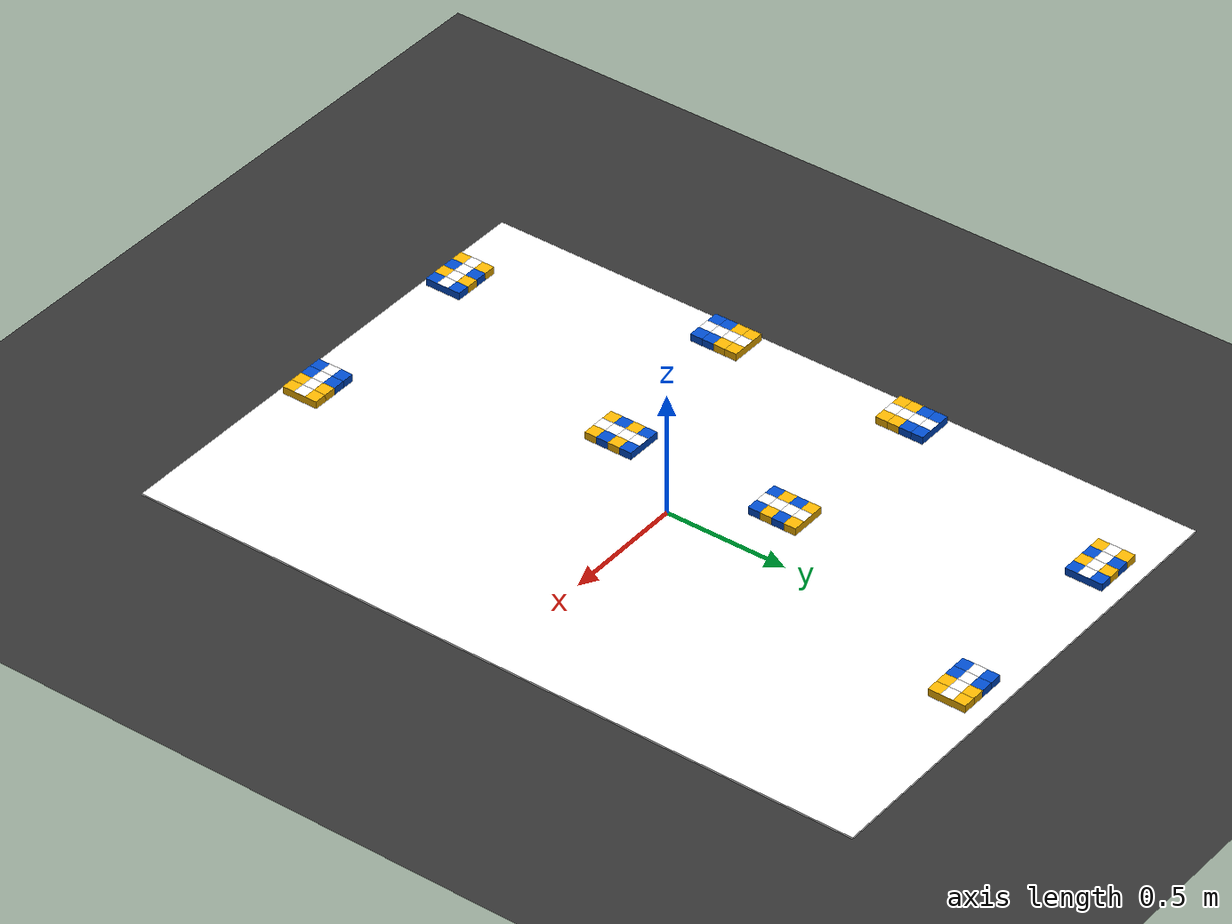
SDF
<sdf version="1.9">
 <world name="eurobot_2026_arena">
  <scene><ambient>1 1 1 1</ambient><background>0.7 0.7 0.7 1</background><shadows>true</shadows></scene>
  <light type="directional" name="sun">
   <diffuse>1 1 1 1</diffuse>
   <specular>0.5 0.5 0.5 1</specular>
   <direction>-0.5 0.5 -1</direction>
  </light>
  <gravity>0 0 -9.81</gravity>
  <physics type="ode">
   <max_step_size>0.001</max_step_size>
   <real_time_update_rate>1000</real_time_update_rate>
   <ode><solver><iters>50</iters><sor>1.3</sor></solver></ode>
  </physics>
  <plugin filename="libgz-sim-physics-system.so" name="gz::sim::systems::Physics"/>
  <plugin filename="libgz-sim-user-commands-system.so" name="gz::sim::systems::UserCommands"/>
  <plugin filename="libgz-sim-scene-broadcaster-system.so" name="gz::sim::systems::SceneBroadcaster"/>
  <plugin filename="libgz-sim-sensors-system.so" name="gz::sim::systems::Sensors">
   <render_engine>ogre2</render_engine>
   <use_hdr>true</use_hdr>
   <gamma_correction>true</gamma_correction>
   <antialiasing>4</antialiasing>
   <high_quality_shadows>true</high_quality_shadows>
  </plugin>
  <model name="ground_plane">
   <static>true</static>
   <link name="link">
    <collision name="collision"><geometry><plane><normal>0 0 1</normal></plane></geometry></collision>
    <visual name="visual">
     <geometry><plane><normal>0 0 1</normal><size>20 20</size></plane></geometry>
     <material>
      <ambient>0.8 0.8 0.8 1</ambient>
      <diffuse>0.2 0.2 0.2 1</diffuse>
      <specular>0.8 0.8 0.8 1</specular>
     </material>
    </visual>
   </link>
  </model>
  <include><uri>model://mat</uri></include>
  <include>
   <uri>model://crate_blue</uri>
   <name>crate_blue_001</name>
   <pose>-0.200000 0.275000 0.050000 0 0 0.000000</pose>
  </include>
  <include>
   <uri>model://crate_yellow</uri>
   <name>crate_yellow_002</name>
   <pose>-0.200000 0.325000 0.050000 0 0 0.000000</pose>
  </include>
  <include>
   <uri>model://crate_blue</uri>
   <name>crate_blue_003</name>
   <pose>-0.200000 0.375000 0.050000 0 0 0.000000</pose>
  </include>
  <include>
   <uri>model://crate_yellow</uri>
   <name>crate_yellow_004</name>
   <pose>-0.200000 0.425000 0.050000 0 0 0.000000</pose>
  </include>
  <include>
   <uri>model://crate_yellow</uri>
   <name>crate_yellow_005</name>
   <pose>-0.875000 0.325000 0.050000 0 0 0.000000</pose>
  </include>
  <include>
   <uri>model://crate_yellow</uri>
   <name>crate_yellow_006</name>
   <pose>-0.875000 0.375000 0.050000 0 0 0.000000</pose>
  </include>
  <include>
   <uri>model://crate_blue</uri>
   <name>crate_blue_007</name>
   <pose>-0.875000 0.425000 0.050000 0 0 0.000000</pose>
  </include>
  <include>
   <uri>model://crate_blue</uri>
   <name>crate_blue_008</name>
   <pose>-0.875000 0.475000 0.050000 0 0 0.000000</pose>
  </include>
  <include>
   <uri>model://crate_yellow</uri>
   <name>crate_yellow_009</name>
   <pose>-0.675000 1.375000 0.050000 0 0 -1.570796</pose>
  </include>
  <include>
   <uri>model://crate_blue</uri>
   <name>crate_blue_010</name>
   <pose>-0.625000 1.375000 0.050000 0 0 -1.570796</pose>
  </include>
  <include>
   <uri>model://crate_yellow</uri>
   <name>crate_yellow_011</name>
   <pose>-0.575000 1.375000 0.050000 0 0 -1.570796</pose>
  </include>
  <include>
   <uri>model://crate_blue</uri>
   <name>crate_blue_012</name>
   <pose>-0.525000 1.375000 0.050000 0 0 -1.570796</pose>
  </include>
  <include>
   <uri>model://crate_blue</uri>
   <name>crate_blue_013</name>
   <pose>0.125000 1.375000 0.050000 0 0 -1.570796</pose>
  </include>
  <include>
   <uri>model://crate_blue</uri>
   <name>crate_blue_014</name>
   <pose>0.175000 1.375000 0.050000 0 0 -1.570796</pose>
  </include>
  <include>
   <uri>model://crate_yellow</uri>
   <name>crate_yellow_015</name>
   <pose>0.225000 1.375000 0.050000 0 0 -1.570796</pose>
  </include>
  <include>
   <uri>model://crate_yellow</uri>
   <name>crate_yellow_016</name>
   <pose>0.275000 1.375000 0.050000 0 0 -1.570796</pose>
  </include>
  <include>
   <uri>model://crate_blue</uri>
   <name>crate_blue_015</name>
   <pose>-0.200000 -0.275000 0.050000 0 0 0.000000</pose>
  </include>
  <include>
   <uri>model://crate_yellow</uri>
   <name>crate_yellow_017</name>
   <pose>-0.200000 -0.325000 0.050000 0 0 0.000000</pose>
  </include>
  <include>
   <uri>model://crate_blue</uri>
   <name>crate_blue_016</name>
   <pose>-0.200000 -0.375000 0.050000 0 0 0.000000</pose>
  </include>
  <include>
   <uri>model://crate_yellow</uri>
   <name>crate_yellow_018</name>
   <pose>-0.200000 -0.425000 0.050000 0 0 0.000000</pose>
  </include>
  <include>
   <uri>model://crate_yellow</uri>
   <name>crate_yellow_019</name>
   <pose>-0.875000 -0.325000 0.050000 0 0 0.000000</pose>
  </include>
  <include>
   <uri>model://crate_yellow</uri>
   <name>crate_yellow_020</name>
   <pose>-0.875000 -0.375000 0.050000 0 0 0.000000</pose>
  </include>
  <include>
   <uri>model://crate_blue</uri>
   <name>crate_blue_017</name>
   <pose>-0.875000 -0.425000 0.050000 0 0 0.000000</pose>
  </include>
  <include>
   <uri>model://crate_blue</uri>
   <name>crate_blue_018</name>
   <pose>-0.875000 -0.475000 0.050000 0 0 0.000000</pose>
  </include>
  <include>
   <uri>model://crate_yellow</uri>
   <name>crate_yellow_021</name>
   <pose>-0.675000 -1.375000 0.050000 0 0 -1.570796</pose>
  </include>
  <include>
   <uri>model://crate_blue</uri>
   <name>crate_blue_019</name>
   <pose>-0.625000 -1.375000 0.050000 0 0 -1.570796</pose>
  </include>
  <include>
   <uri>model://crate_yellow</uri>
   <name>crate_yellow_022</name>
   <pose>-0.575000 -1.375000 0.050000 0 0 -1.570796</pose>
  </include>
  <include>
   <uri>model://crate_blue</uri>
   <name>crate_blue_020</name>
   <pose>-0.525000 -1.375000 0.050000 0 0 -1.570796</pose>
  </include>
  <include>
   <uri>model://crate_blue</uri>
   <name>crate_blue_021</name>
   <pose>0.125000 -1.375000 0.050000 0 0 -1.570796</pose>
  </include>
  <include>
   <uri>model://crate_blue</uri>
   <name>crate_blue_022</name>
   <pose>0.175000 -1.375000 0.050000 0 0 -1.570796</pose>
  </include>
  <include>
   <uri>model://crate_yellow</uri>
   <name>crate_yellow_023</name>
   <pose>0.225000 -1.375000 0.050000 0 0 -1.570796</pose>
  </include>
  <include>
   <uri>model://crate_yellow</uri>
   <name>crate_yellow_024</name>
   <pose>0.275000 -1.375000 0.050000 0 0 -1.570796</pose>
  </include>
 </world>
</sdf>

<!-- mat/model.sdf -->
<sdf version="1.9">
	<!-- Define a floor mat (3000mm x 2000mm x 70mm) -->
	<model name="floor_mat">
		<static>true</static>
		<link name="floor_link">
			<collision name="collision">
				<geometry>
					<box>
						<size>2 3 0.007</size>						<!-- 3000mm x 2000mm x 70mm -->
					</box>
				</geometry>
				<surface>
					<friction>
						<ode>
							<mu>0.9</mu>
							<mu2>0.9</mu2>
						</ode>
					</friction>
				</surface>
			</collision>
			<visual name="visual">
				<geometry>
					<box>
						<size>2 3 0.007</size>						<!-- 3000mm x 2000mm x 70mm -->
					</box>
				</geometry>
				<material>
					<diffuse>1 1 1 1</diffuse>
					<pbr>
						<metal>
							<albedo_map>model://mat/mat.png</albedo_map>
							<metalness>0.0</metalness>
							<roughness>0.8</roughness>
						</metal>
					</pbr>
				</material>
			</visual>
		</link>
	</model>
</sdf>

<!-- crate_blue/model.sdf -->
<sdf version="1.9">
  <model name="Crate_blue">
    <static>false</static>
    <link name="link">
      <inertial>
        <mass>0.17</mass>
        <inertia>
          <ixx>0.166</ixx>
          <iyy>0.166</iyy>
          <izz>0.166</izz>
          <ixy>0</ixy>
          <ixz>0</ixz>
          <iyz>0</iyz>
        </inertia>
      </inertial>

      <collision name="collision">
        <geometry>
          <box>
            <size>0.15 0.05 0.03</size>
          </box>
        </geometry>
        <surface>
          <friction>
            <ode>
              <mu>1.0</mu>
              <mu2>1.0</mu2>
            </ode>
          </friction>
          <bounce/>
          <contact/>
        </surface>
      </collision>

      <visual name="visual">
        <geometry>
          <box>
            <size>0.15 0.05 0.03</size>
          </box>
        </geometry>
        <material>
          <ambient>0.0 0.3 0.8 1</ambient>
          <diffuse>0.0 0.3 0.8 1</diffuse>
          <specular>0.2 0.2 0.2 1</specular>
        </material>
      </visual>
      <visual name="aruco_top">
        <pose>0 0 0.0155 0 0 0</pose>
        <cast_shadows>false</cast_shadows>
        <geometry>
          <plane>
            <size>0.05 0.05</size>
            <normal>0 0 1</normal>
          </plane>
        </geometry>
        <material>
          <diffuse>1 1 1 1</diffuse>
          <!-- this is must!!!! -->
          <pbr>
            <metal>
              <albedo_map>model://aruco/aruco_47_.png</albedo_map>
              <metalness>0.0</metalness>
              <roughness>0.0</roughness>
            </metal>
          </pbr>
          <double_sided>true</double_sided>
        </material>
      </visual>
    </link>
  </model>
</sdf>

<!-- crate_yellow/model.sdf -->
<sdf version="1.9">
  <model name="Crate_yellow">
    <static>false</static>
    <link name="link">
      <inertial>
        <mass>0.17</mass>
        <inertia>
          <ixx>0.166</ixx>
          <iyy>0.166</iyy>
          <izz>0.166</izz>
          <ixy>0</ixy>
          <ixz>0</ixz>
          <iyz>0</iyz>
        </inertia>
      </inertial>

      <collision name="collision">
        <geometry>
          <box>
            <size>0.15 0.05 0.03</size>
          </box>
        </geometry>
        <surface>
          <friction>
            <ode>
              <mu>1.0</mu>
              <mu2>1.0</mu2>
            </ode>
          </friction>
          <bounce/>
          <contact/>
        </surface>
      </collision>

      <visual name="visual">
        <geometry>
          <box>
            <size>0.15 0.05 0.03</size>
          </box>
        </geometry>
        <material>
          <ambient>0.969 0.710 0.000 1</ambient>
          <diffuse>0.969 0.710 0.000 1</diffuse>
          <specular>0.2 0.2 0.2 1</specular>
        </material>
      </visual>
      <visual name="aruco_top">
        <pose>0 0 0.0155 0 0 0</pose>
        <cast_shadows>false</cast_shadows>
        <geometry>
          <plane>
            <size>0.05 0.05</size>
            <normal>0 0 1</normal>
          </plane>
        </geometry>
        <material>
          <diffuse>1 1 1 1</diffuse>
          <!-- ↑this is must!!!! -->
          <pbr>
            <metal>
              <albedo_map>model://aruco/aruco_36_.png</albedo_map>
              <metalness>0.0</metalness>
              <roughness>0.0</roughness>
            </metal>
          </pbr>
          <double_sided>true</double_sided>
        </material>
      </visual>
    </link>
  </model>
</sdf>
